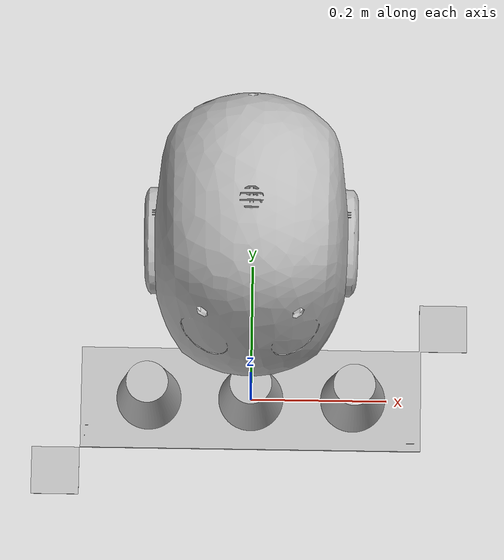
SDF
<?xml version="1.0" ?>
<sdf version="1.6">
	<model name="cup_table">
		<link name="cup_0">
			<kinematic>false</kinematic>
			<pose frame="">-0.15000000000000147 0 0.06653589988882032 0.0 -0.0 0.0</pose>
			<inertial>
				<pose frame="">0.0 0.0 0.0 0 0 0</pose>
				<mass>0.022211147933822607</mass>
				<inertia>
					<ixx>0.00014611673869111924</ixx>
					<ixy>-1.5531895769527185e-18</ixy>
					<ixz>1.1178258318977897e-19</ixz>
					<iyy>0.0006458675672021381</iyy>
					<iyz>0.00022167580730109195</iyz>
					<izz>0.000532404975013305</izz>
				</inertia>
			</inertial>
			<collision name="cup_0_collision">
				<geometry>
					<mesh>
						<uri>model://cup_table/meshes/CAD/cup.dae</uri>
						<scale>1 1 1</scale>
					</mesh>
				</geometry>
			</collision>
			<visual name="cup_0_visual">
				<geometry>
					<mesh>
						<uri>model://cup_table/meshes/CAD/cup.dae</uri>
						<scale>1 1 1</scale>
					</mesh>
				</geometry>
			</visual>
		</link>
		<link name="cup_1">
			<kinematic>false</kinematic>
			<pose frame="">0 0 0.06653589988882033 0.0 -0.0 0.0</pose>
			<inertial>
				<pose frame="">0.0 0.0 0.0 0 0 0</pose>
				<mass>0.033236984960103674</mass>
				<inertia>
					<ixx>0.0002655075587010634</ixx>
					<ixy>5.844071893079672e-19</ixy>
					<ixz>-1.9218759916839192e-19</ixz>
					<iyy>0.0002655075587010631</iyy>
					<iyz>-5.0988546718144786e-20</iyz>
					<izz>4.442391904143872e-05</izz>
				</inertia>
			</inertial>
			<collision name="cup_1_collision">
				<geometry>
					<mesh>
						<uri>model://cup_table/meshes/CAD/cup.dae</uri>
						<scale>1 1 1</scale>
					</mesh>
				</geometry>
			</collision>
			<visual name="cup_1_visual">
				<geometry>
					<mesh>
						<uri>model://cup_table/meshes/CAD/cup.dae</uri>
						<scale>1 1 1</scale>
					</mesh>
				</geometry>
			</visual>
		</link>
		<link name="cup_2">
			<kinematic>false</kinematic>
			<pose frame="">0.15000000000000038 0 0.06653589988882033 0.0 -0.0 0.0</pose>
			<inertial>
				<pose frame="">0.0 0.0 0.0 0 0 0</pose>
				<mass>0.022211147933822607</mass>
				<inertia>
					<ixx>0.00014611673869111902</ixx>
					<ixy>4.0790837374515834e-19</ixy>
					<ixz>1.176658770418726e-19</ixz>
					<iyy>0.0006458675672021326</iyy>
					<iyz>-0.00022167580730109122</iyz>
					<izz>0.0005324049750132994</izz>
				</inertia>
			</inertial>
			<collision name="cup_2_collision">
				<geometry>
					<mesh>
						<uri>model://cup_table/meshes/CAD/cup.dae</uri>
						<scale>1 1 1</scale>
					</mesh>
				</geometry>
			</collision>
			<visual name="cup_2_visual">
				<geometry>
					<mesh>
						<uri>model://cup_table/meshes/CAD/cup.dae</uri>
						<scale>1 1 1</scale>
					</mesh>
				</geometry>
			</visual>
		</link>
		<link name="table">
			<kinematic>true</kinematic>
			<pose frame="">-4.494129827511006e-05 5.628056351335279e-05 0.0024980566598438243 0.0 -0.0 0.0</pose>
			<inertial>
				<pose frame="">0.0 0.0 0.0 0 0 0</pose>
				<mass>2.9408924228298607</mass>
				<inertia>
					<ixx>0.005534230930057993</ixx>
					<ixy>-8.978008213044268e-06</ixy>
					<ixz>-7.448178725504518e-07</ixz>
					<iyy>0.06119888753570589</iyy>
					<iyz>5.947538560628709e-07</iyz>
					<izz>0.06668417217390213</izz>
				</inertia>
			</inertial>
			<collision name="table_collision">
				<geometry>
					<mesh>
						<uri>model://cup_table/meshes/CAD/table.dae</uri>
						<scale>1 1 1</scale>
					</mesh>
				</geometry>
			</collision>
			<visual name="table_visual">
				<geometry>
					<mesh>
						<uri>model://cup_table/meshes/CAD/table.dae</uri>
						<scale>1 1 1</scale>
					</mesh>
				</geometry>
			</visual>
		</link>
		<link name="head">
			<kinematic>true</kinematic>
			<pose frame="">0.0006470497602335966 0.04601890562464172 0.8803170317244866 0.0 -0.0 0.0</pose>
			<inertial>
				<pose frame="">0.0 0.0 0.0 0 0 0</pose>
				<mass>2.0690288729005957</mass>
				<inertia>
					<ixx>1.6405545784076312</ixx>
					<ixy>-9.6882839740856e-05</ixy>
					<ixz>-0.08661510611492024</ixz>
					<iyy>1.629789251542146</iyy>
					<iyz>-0.0013000314402526782</iyz>
					<izz>0.030622929355755123</izz>
				</inertia>
			</inertial>
			<collision name="head_collision">
				<geometry>
					<mesh>
						<uri>model://roboy_infineon_game/meshes/CAD/head.stl</uri>
						<scale>0.001 0.001 0.001</scale>
					</mesh>
				</geometry>
			</collision>
			<visual name="head_visual">
				<geometry>
					<mesh>
						<uri>model://roboy_infineon_game/meshes/CAD/head.stl</uri>
						<scale>0.001 0.001 0.001</scale>
					</mesh>
				</geometry>
			</visual>
			<sensor type="multicamera" name="zed_camera">
				<update_rate>30.0</update_rate>
				<camera name="right">
					<pose>0.059 -0.128 0.073 0 0 -1.57</pose>
					<horizontal_fov>0.8709216071359963</horizontal_fov>
					<image>
						<width>640</width>
						<height>480</height>
						<format>R8G8B8</format>
					</image>
					<clip>
						<near>0.02</near>
						<far>300</far>
					</clip>
					<noise>
						<type>gaussian</type>
						<mean>0.0</mean>
						<stddev>0.007</stddev>
					</noise>
				</camera>
				<camera name="left">
					<pose>-0.061 -0.128 0.073 0 0 -1.57</pose>
					<horizontal_fov>0.8709216071359963</horizontal_fov>
					<image>
						<width>640</width>
						<height>480</height>
						<format>R8G8B8</format>
					</image>
					<clip>
						<near>0.02</near>
						<far>300</far>
					</clip>
					<noise>
						<type>gaussian</type>
						<mean>0.0</mean>
						<stddev>0.007</stddev>
					</noise>
				</camera>
				<plugin name="stereo_camera_controller" filename="libgazebo_ros_multicamera.so">
					<alwaysOn>true</alwaysOn>
					<updateRate>30.0</updateRate>
					<cameraName>zed/camera</cameraName>
					<imageTopicName>image_raw_color</imageTopicName>
					<cameraInfoTopicName>camera_info</cameraInfoTopicName>
					<frameName>camera_optical_frame</frameName>
					<hackBaseline>0.07</hackBaseline>
					<distortionK1>0.0</distortionK1>
					<distortionK2>0.0</distortionK2>
					<distortionK3>0.0</distortionK3>
					<distortionT1>0.0</distortionT1>
					<distortionT2>0.0</distortionT2>
				</plugin>
			</sensor>
		</link>
		<joint name="cup_1_slider" type="prismatic">
			<parent>table</parent>
			<child>cup_1</child>
			<pose frame="">-7.080418225847746e-17 -1.652097586031141e-16 -0.07248136002923451 0 0 0</pose>
			<axis>
				<xyz>1.0 0.0 0.0</xyz>
				<limit>
					<lower>0.0</lower>
					<upper>0.0</upper>
				</limit>
				<use_parent_model_frame>0</use_parent_model_frame>
			</axis>
		</joint>
		<joint name="cup_0_slider" type="prismatic">
			<parent>table</parent>
			<child>cup_0</child>
			<pose frame="">0.15000000000000147 3.0681959343027147e-16 -0.061535899888820314 0 0 0</pose>
			<axis>
				<xyz>1.0 0.0 0.0</xyz>
				<limit>
					<lower>0.0</lower>
					<upper>0.0</upper>
				</limit>
				<use_parent_model_frame>0</use_parent_model_frame>
			</axis>
		</joint>
		<joint name="cup_2_slider" type="prismatic">
			<parent>table</parent>
			<child>cup_2</child>
			<pose frame="">-0.15000000000000038 1.3906211788566313e-16 -0.06153589988882033 0 0 0</pose>
			<axis>
				<xyz>1.0 0.0 0.0</xyz>
				<limit>
					<lower>0.0</lower>
					<upper>0.0</upper>
				</limit>
				<use_parent_model_frame>0</use_parent_model_frame>
			</axis>
		</joint>
		<plugin filename="libCupTablePlugin.so" name="CupTablePlugin"/>
	</model>
</sdf>
